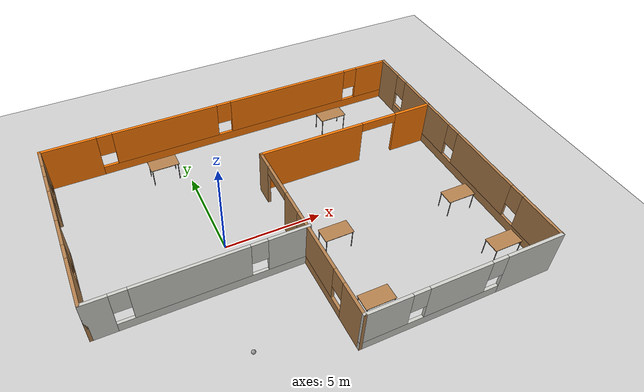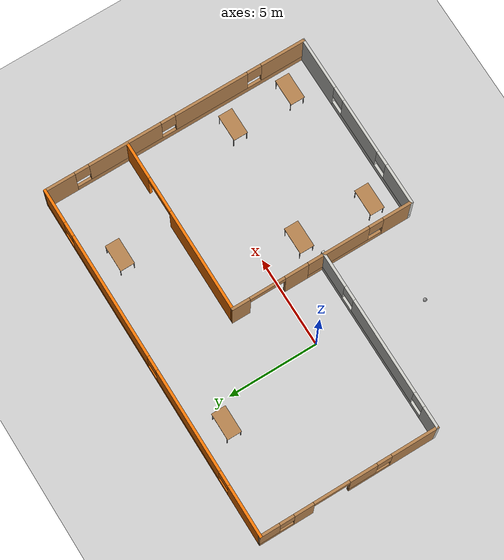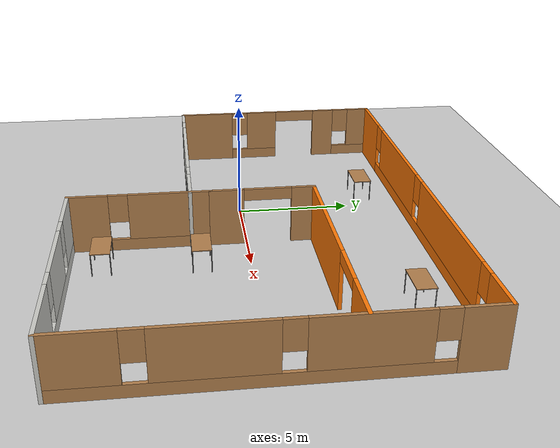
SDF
<sdf version="1.6">
 <world name="default">
  <plugin name="welcome" filename="libwelcome.so"/>
  <light name="sun" type="directional">
   <pose>0 0 10 0 -0 0</pose>
   <diffuse>0.8 0.8 0.8 1</diffuse>
   <specular>0.2 0.2 0.2 1</specular>
   <attenuation>
    <range>1000</range>
    <constant>0.9</constant>
    <linear>0.01</linear>
    <quadratic>0.001</quadratic>
   </attenuation>
   <direction>-0.5 0.1 -0.9</direction>
  </light>
  <model name="ground_plane">
   <static>1</static>
   <link name="link">
    <collision name="collision">
     <geometry><plane><normal>0 0 1</normal><size>100 100</size></plane></geometry>
     <surface>
      <contact><collide_bitmask>65535</collide_bitmask></contact>
      <friction><ode><mu>100</mu><mu2>50</mu2></ode></friction>
     </surface>
    </collision>
    <visual name="visual">
     <cast_shadows>0</cast_shadows>
     <geometry><plane><normal>0 0 1</normal><size>100 100</size></plane></geometry>
     <material>
      <script><uri>file://media/materials/scripts/gazebo.material</uri><name>Gazebo/Grey</name></script>
     </material>
    </visual>
   </link>
  </model>
  <gravity>0 0 -9.8</gravity>
  <magnetic_field>6e-06 2.3e-05 -4.2e-05</magnetic_field>
  <atmosphere type="adiabatic"/>
  <physics name="default_physics" default="0" type="ode">
   <max_step_size>0.001</max_step_size>
   <real_time_factor>1</real_time_factor>
   <real_time_update_rate>1000</real_time_update_rate>
  </physics>
  <scene><ambient>0.4 0.4 0.4 1</ambient><background>0.7 0.7 0.7 1</background><shadows>1</shadows></scene>
  <spherical_coordinates>
   <surface_model>EARTH_WGS84</surface_model>
   <latitude_deg>0</latitude_deg>
   <longitude_deg>0</longitude_deg>
   <elevation>0</elevation>
   <heading_deg>0</heading_deg>
  </spherical_coordinates>
  <model name="building_0">
   <pose>3.05389 0.08095 0 0 -0 0</pose>
   <link name="Wall_100">
    <pose>-4.875 -2.425 0 0 -0 0</pose>
    <visual name="Wall_100_Visual_0">
     <pose>-4.50618 0 1.25 0 -0 0</pose>
     <geometry><box><size>1.23764 0.15 2.5</size></box></geometry>
     <material>
      <script><uri>file://media/materials/scripts/gazebo.material</uri><name>Gazebo/CeilingTiled</name></script>
      <ambient>0.996078 0.47451 0.0196078 1</ambient>
     </material>
     <meta><layer>0</layer></meta>
    </visual>
    <collision name="Wall_100_Collision_0">
     <geometry><box><size>1.23764 0.15 2.5</size></box></geometry>
     <pose>-4.50618 0 1.25 0 -0 0</pose>
    </collision>
    <visual name="Wall_100_Visual_1">
     <pose>0.618821 0 0.25 0 -0 0</pose>
     <geometry><box><size>9.01236 0.15 0.5</size></box></geometry>
     <material>
      <script><uri>file://media/materials/scripts/gazebo.material</uri><name>Gazebo/CeilingTiled</name></script>
      <ambient>0.996078 0.47451 0.0196078 1</ambient>
     </material>
     <meta><layer>0</layer></meta>
    </visual>
    <collision name="Wall_100_Collision_1">
     <geometry><box><size>9.01236 0.15 0.5</size></box></geometry>
     <pose>0.618821 0 0.25 0 -0 0</pose>
    </collision>
    <visual name="Wall_100_Visual_2">
     <pose>-0.416967 0 1.5 0 -0 0</pose>
     <geometry><box><size>5.34078 0.15 2</size></box></geometry>
     <material>
      <script><uri>file://media/materials/scripts/gazebo.material</uri><name>Gazebo/CeilingTiled</name></script>
      <ambient>0.996078 0.47451 0.0196078 1</ambient>
     </material>
     <meta><layer>0</layer></meta>
    </visual>
    <collision name="Wall_100_Collision_2">
     <geometry><box><size>5.34078 0.15 2</size></box></geometry>
     <pose>-0.416967 0 1.5 0 -0 0</pose>
    </collision>
    <visual name="Wall_100_Visual_3">
     <pose>4.08921 0 1.5 0 -0 0</pose>
     <geometry><box><size>2.07158 0.15 2</size></box></geometry>
     <material>
      <script><uri>file://media/materials/scripts/gazebo.material</uri><name>Gazebo/CeilingTiled</name></script>
      <ambient>0.996078 0.47451 0.0196078 1</ambient>
     </material>
     <meta><layer>0</layer></meta>
    </visual>
    <collision name="Wall_100_Collision_3">
     <geometry><box><size>2.07158 0.15 2</size></box></geometry>
     <pose>4.08921 0 1.5 0 -0 0</pose>
    </collision>
    <visual name="Wall_100_Visual_4">
     <pose>-3.48736 0 1.9 0 -0 0</pose>
     <geometry><box><size>0.8 0.15 1.2</size></box></geometry>
     <material>
      <script><uri>file://media/materials/scripts/gazebo.material</uri><name>Gazebo/CeilingTiled</name></script>
      <ambient>0.996078 0.47451 0.0196078 1</ambient>
     </material>
     <meta><layer>0</layer></meta>
    </visual>
    <collision name="Wall_100_Collision_4">
     <geometry><box><size>0.8 0.15 1.2</size></box></geometry>
     <pose>-3.48736 0 1.9 0 -0 0</pose>
    </collision>
    <visual name="Wall_100_Visual_5">
     <pose>2.65342 0 1.9 0 -0 0</pose>
     <geometry><box><size>0.8 0.15 1.2</size></box></geometry>
     <material>
      <script><uri>file://media/materials/scripts/gazebo.material</uri><name>Gazebo/CeilingTiled</name></script>
      <ambient>0.996078 0.47451 0.0196078 1</ambient>
     </material>
     <meta><layer>0</layer></meta>
    </visual>
    <collision name="Wall_100_Collision_5">
     <geometry><box><size>0.8 0.15 1.2</size></box></geometry>
     <pose>2.65342 0 1.9 0 -0 0</pose>
    </collision>
   </link>
   <link name="Wall_102">
    <pose>0.075 0.6 0 0 -0 1.5708</pose>
    <visual name="Wall_102_Visual_0">
     <pose>-1.51676 0 1.25 0 -0 0</pose>
     <geometry><box><size>1.46648 0.15 2.5</size></box></geometry>
     <material>
      <script><uri>file://media/materials/scripts/gazebo.material</uri><name>Gazebo/Wood</name></script>
      <ambient>0.996078 0.47451 0.0196078 1</ambient>
     </material>
     <meta><layer>0</layer></meta>
    </visual>
    <collision name="Wall_102_Collision_0">
     <geometry><box><size>1.46648 0.15 2.5</size></box></geometry>
     <pose>-1.51676 0 1.25 0 -0 0</pose>
    </collision>
    <visual name="Wall_102_Visual_1">
     <pose>1.73324 0 1.25 0 -0 0</pose>
     <geometry><box><size>1.03352 0.15 2.5</size></box></geometry>
     <material>
      <script><uri>file://media/materials/scripts/gazebo.material</uri><name>Gazebo/Wood</name></script>
      <ambient>0.996078 0.47451 0.0196078 1</ambient>
     </material>
     <meta><layer>0</layer></meta>
    </visual>
    <collision name="Wall_102_Collision_1">
     <geometry><box><size>1.03352 0.15 2.5</size></box></geometry>
     <pose>1.73324 0 1.25 0 -0 0</pose>
    </collision>
    <visual name="Wall_102_Visual_2">
     <pose>0.216481 0 2.25 0 -0 0</pose>
     <geometry><box><size>2 0.15 0.5</size></box></geometry>
     <material>
      <script><uri>file://media/materials/scripts/gazebo.material</uri><name>Gazebo/Wood</name></script>
      <ambient>0.996078 0.47451 0.0196078 1</ambient>
     </material>
     <meta><layer>0</layer></meta>
    </visual>
    <collision name="Wall_102_Collision_2">
     <geometry><box><size>2 0.15 0.5</size></box></geometry>
     <pose>0.216481 0 2.25 0 -0 0</pose>
    </collision>
   </link>
   <link name="Wall_104">
    <pose>5 2.775 0 0 -0 0</pose>
    <visual name="Wall_104_Visual_0">
     <pose>-2.08983 0 1.25 0 -0 0</pose>
     <geometry><box><size>5.82034 0.15 2.5</size></box></geometry>
     <material>
      <script><uri>file://media/materials/scripts/gazebo.material</uri><name>Gazebo/Grey</name></script>
      <ambient>0.996078 0.47451 0.0196078 1</ambient>
     </material>
     <meta><layer>0</layer></meta>
    </visual>
    <collision name="Wall_104_Collision_0">
     <geometry><box><size>5.82034 0.15 2.5</size></box></geometry>
     <pose>-2.08983 0 1.25 0 -0 0</pose>
    </collision>
    <visual name="Wall_104_Visual_1">
     <pose>3.91017 0 1.25 0 -0 0</pose>
     <geometry><box><size>2.17965 0.15 2.5</size></box></geometry>
     <material>
      <script><uri>file://media/materials/scripts/gazebo.material</uri><name>Gazebo/Grey</name></script>
      <ambient>0.996078 0.47451 0.0196078 1</ambient>
     </material>
     <meta><layer>0</layer></meta>
    </visual>
    <collision name="Wall_104_Collision_1">
     <geometry><box><size>2.17965 0.15 2.5</size></box></geometry>
     <pose>3.91017 0 1.25 0 -0 0</pose>
    </collision>
    <visual name="Wall_104_Visual_2">
     <pose>1.82035 0 2.25 0 -0 0</pose>
     <geometry><box><size>2 0.15 0.5</size></box></geometry>
     <material>
      <script><uri>file://media/materials/scripts/gazebo.material</uri><name>Gazebo/Grey</name></script>
      <ambient>0.996078 0.47451 0.0196078 1</ambient>
     </material>
     <meta><layer>0</layer></meta>
    </visual>
    <collision name="Wall_104_Collision_2">
     <geometry><box><size>2 0.15 0.5</size></box></geometry>
     <pose>1.82035 0 2.25 0 -0 0</pose>
    </collision>
   </link>
   <link name="Wall_90">
    <pose>-9.925 2.5 0 0 -0 1.5708</pose>
    <visual name="Wall_90_Visual_0">
     <pose>-3.67666 0 1.25 0 -0 0</pose>
     <geometry><box><size>2.64668 0.15 2.5</size></box></geometry>
     <material>
      <script><uri>file://media/materials/scripts/gazebo.material</uri><name>Gazebo/Wood</name></script>
      <ambient>0.996078 0.47451 0.0196078 1</ambient>
     </material>
     <meta><layer>0</layer></meta>
    </visual>
    <collision name="Wall_90_Collision_0">
     <geometry><box><size>2.64668 0.15 2.5</size></box></geometry>
     <pose>-3.67666 0 1.25 0 -0 0</pose>
    </collision>
    <visual name="Wall_90_Visual_1">
     <pose>2.52285 0 1.25 0 -0 0</pose>
     <geometry><box><size>1.08977 0.15 2.5</size></box></geometry>
     <material>
      <script><uri>file://media/materials/scripts/gazebo.material</uri><name>Gazebo/Wood</name></script>
      <ambient>0.996078 0.47451 0.0196078 1</ambient>
     </material>
     <meta><layer>0</layer></meta>
    </visual>
    <collision name="Wall_90_Collision_1">
     <geometry><box><size>1.08977 0.15 2.5</size></box></geometry>
     <pose>2.52285 0 1.25 0 -0 0</pose>
    </collision>
    <visual name="Wall_90_Visual_2">
     <pose>-1.18768 0 0.25 0 -0 0</pose>
     <geometry><box><size>2.33128 0.15 0.5</size></box></geometry>
     <material>
      <script><uri>file://media/materials/scripts/gazebo.material</uri><name>Gazebo/Wood</name></script>
      <ambient>0.996078 0.47451 0.0196078 1</ambient>
     </material>
     <meta><layer>0</layer></meta>
    </visual>
    <collision name="Wall_90_Collision_2">
     <geometry><box><size>2.33128 0.15 0.5</size></box></geometry>
     <pose>-1.18768 0 0.25 0 -0 0</pose>
    </collision>
    <visual name="Wall_90_Visual_3">
     <pose>4.03387 0 0.25 0 -0 0</pose>
     <geometry><box><size>1.93227 0.15 0.5</size></box></geometry>
     <material>
      <script><uri>file://media/materials/scripts/gazebo.material</uri><name>Gazebo/Wood</name></script>
      <ambient>0.996078 0.47451 0.0196078 1</ambient>
     </material>
     <meta><layer>0</layer></meta>
    </visual>
    <collision name="Wall_90_Collision_3">
     <geometry><box><size>1.93227 0.15 0.5</size></box></geometry>
     <pose>4.03387 0 0.25 0 -0 0</pose>
    </collision>
    <visual name="Wall_90_Visual_4">
     <pose>-0.787677 0 1.5 0 -0 0</pose>
     <geometry><box><size>1.53128 0.15 2</size></box></geometry>
     <material>
      <script><uri>file://media/materials/scripts/gazebo.material</uri><name>Gazebo/Wood</name></script>
      <ambient>0.996078 0.47451 0.0196078 1</ambient>
     </material>
     <meta><layer>0</layer></meta>
    </visual>
    <collision name="Wall_90_Collision_4">
     <geometry><box><size>1.53128 0.15 2</size></box></geometry>
     <pose>-0.787677 0 1.5 0 -0 0</pose>
    </collision>
    <visual name="Wall_90_Visual_5">
     <pose>-0.787677 0 1.5 0 -0 0</pose>
     <geometry><box><size>1.53128 0.15 2</size></box></geometry>
     <material>
      <script><uri>file://media/materials/scripts/gazebo.material</uri><name>Gazebo/Wood</name></script>
      <ambient>0.996078 0.47451 0.0196078 1</ambient>
     </material>
     <meta><layer>0</layer></meta>
    </visual>
    <collision name="Wall_90_Collision_5">
     <geometry><box><size>1.53128 0.15 2</size></box></geometry>
     <pose>-0.787677 0 1.5 0 -0 0</pose>
    </collision>
    <visual name="Wall_90_Visual_6">
     <pose>4.43387 0 1.5 0 -0 0</pose>
     <geometry><box><size>1.13227 0.15 2</size></box></geometry>
     <material>
      <script><uri>file://media/materials/scripts/gazebo.material</uri><name>Gazebo/Wood</name></script>
      <ambient>0.996078 0.47451 0.0196078 1</ambient>
     </material>
     <meta><layer>0</layer></meta>
    </visual>
    <collision name="Wall_90_Collision_6">
     <geometry><box><size>1.13227 0.15 2</size></box></geometry>
     <pose>4.43387 0 1.5 0 -0 0</pose>
    </collision>
    <visual name="Wall_90_Visual_7">
     <pose>-1.95332 0 1.9 0 -0 0</pose>
     <geometry><box><size>0.8 0.15 1.2</size></box></geometry>
     <material>
      <script><uri>file://media/materials/scripts/gazebo.material</uri><name>Gazebo/Wood</name></script>
      <ambient>0.996078 0.47451 0.0196078 1</ambient>
     </material>
     <meta><layer>0</layer></meta>
    </visual>
    <collision name="Wall_90_Collision_7">
     <geometry><box><size>0.8 0.15 1.2</size></box></geometry>
     <pose>-1.95332 0 1.9 0 -0 0</pose>
    </collision>
    <visual name="Wall_90_Visual_8">
     <pose>3.46773 0 1.9 0 -0 0</pose>
     <geometry><box><size>0.8 0.15 1.2</size></box></geometry>
     <material>
      <script><uri>file://media/materials/scripts/gazebo.material</uri><name>Gazebo/Wood</name></script>
      <ambient>0.996078 0.47451 0.0196078 1</ambient>
     </material>
     <meta><layer>0</layer></meta>
    </visual>
    <collision name="Wall_90_Collision_8">
     <geometry><box><size>0.8 0.15 1.2</size></box></geometry>
     <pose>3.46773 0 1.9 0 -0 0</pose>
    </collision>
    <visual name="Wall_90_Visual_9">
     <pose>0.977961 0 2.25 0 -0 0</pose>
     <geometry><box><size>2 0.15 0.5</size></box></geometry>
     <material>
      <script><uri>file://media/materials/scripts/gazebo.material</uri><name>Gazebo/Wood</name></script>
      <ambient>0.996078 0.47451 0.0196078 1</ambient>
     </material>
     <meta><layer>0</layer></meta>
    </visual>
    <collision name="Wall_90_Collision_9">
     <geometry><box><size>2 0.15 0.5</size></box></geometry>
     <pose>0.977961 0 2.25 0 -0 0</pose>
    </collision>
    <visual name="Wall_90_Visual_10">
     <pose>0.977961 0 2.25 0 -0 0</pose>
     <geometry><box><size>2 0.15 0.5</size></box></geometry>
     <material>
      <script><uri>file://media/materials/scripts/gazebo.material</uri><name>Gazebo/Wood</name></script>
      <ambient>0.996078 0.47451 0.0196078 1</ambient>
     </material>
     <meta><layer>0</layer></meta>
    </visual>
    <collision name="Wall_90_Collision_10">
     <geometry><box><size>2 0.15 0.5</size></box></geometry>
     <pose>0.977961 0 2.25 0 -0 0</pose>
    </collision>
   </link>
   <link name="Wall_92">
    <pose>0 7.425 0 0 -0 0</pose>
    <visual name="Wall_92_Visual_0">
     <pose>-8.55189 0 1.25 0 -0 0</pose>
     <geometry><box><size>2.89622 0.15 2.5</size></box></geometry>
     <material>
      <script><uri>file://media/materials/scripts/gazebo.material</uri><name>Gazebo/Grey</name></script>
      <ambient>0.996078 0.47451 0.0196078 1</ambient>
     </material>
     <meta><layer>0</layer></meta>
    </visual>
    <collision name="Wall_92_Collision_0">
     <geometry><box><size>2.89622 0.15 2.5</size></box></geometry>
     <pose>-8.55189 0 1.25 0 -0 0</pose>
    </collision>
    <visual name="Wall_92_Visual_1">
     <pose>1.44811 0 0.25 0 -0 0</pose>
     <geometry><box><size>17.1038 0.15 0.5</size></box></geometry>
     <material>
      <script><uri>file://media/materials/scripts/gazebo.material</uri><name>Gazebo/Grey</name></script>
      <ambient>0.996078 0.47451 0.0196078 1</ambient>
     </material>
     <meta><layer>0</layer></meta>
    </visual>
    <collision name="Wall_92_Collision_1">
     <geometry><box><size>17.1038 0.15 0.5</size></box></geometry>
     <pose>1.44811 0 0.25 0 -0 0</pose>
    </collision>
    <visual name="Wall_92_Visual_2">
     <pose>-3.44613 0 1.5 0 -0 0</pose>
     <geometry><box><size>5.7153 0.15 2</size></box></geometry>
     <material>
      <script><uri>file://media/materials/scripts/gazebo.material</uri><name>Gazebo/Grey</name></script>
      <ambient>0.996078 0.47451 0.0196078 1</ambient>
     </material>
     <meta><layer>0</layer></meta>
    </visual>
    <collision name="Wall_92_Collision_2">
     <geometry><box><size>5.7153 0.15 2</size></box></geometry>
     <pose>-3.44613 0 1.5 0 -0 0</pose>
    </collision>
    <visual name="Wall_92_Visual_3">
     <pose>3.7232 0 1.5 0 -0 0</pose>
     <geometry><box><size>7.02337 0.15 2</size></box></geometry>
     <material>
      <script><uri>file://media/materials/scripts/gazebo.material</uri><name>Gazebo/Grey</name></script>
      <ambient>0.996078 0.47451 0.0196078 1</ambient>
     </material>
     <meta><layer>0</layer></meta>
    </visual>
    <collision name="Wall_92_Collision_3">
     <geometry><box><size>7.02337 0.15 2</size></box></geometry>
     <pose>3.7232 0 1.5 0 -0 0</pose>
    </collision>
    <visual name="Wall_92_Visual_4">
     <pose>9.01745 0 1.5 0 -0 0</pose>
     <geometry><box><size>1.96511 0.15 2</size></box></geometry>
     <material>
      <script><uri>file://media/materials/scripts/gazebo.material</uri><name>Gazebo/Grey</name></script>
      <ambient>0.996078 0.47451 0.0196078 1</ambient>
     </material>
     <meta><layer>0</layer></meta>
    </visual>
    <collision name="Wall_92_Collision_4">
     <geometry><box><size>1.96511 0.15 2</size></box></geometry>
     <pose>9.01745 0 1.5 0 -0 0</pose>
    </collision>
    <visual name="Wall_92_Visual_5">
     <pose>-6.70378 0 1.9 0 -0 0</pose>
     <geometry><box><size>0.8 0.15 1.2</size></box></geometry>
     <material>
      <script><uri>file://media/materials/scripts/gazebo.material</uri><name>Gazebo/Grey</name></script>
      <ambient>0.996078 0.47451 0.0196078 1</ambient>
     </material>
     <meta><layer>0</layer></meta>
    </visual>
    <collision name="Wall_92_Collision_5">
     <geometry><box><size>0.8 0.15 1.2</size></box></geometry>
     <pose>-6.70378 0 1.9 0 -0 0</pose>
    </collision>
    <visual name="Wall_92_Visual_6">
     <pose>-0.188482 0 1.9 0 -0 0</pose>
     <geometry><box><size>0.8 0.15 1.2</size></box></geometry>
     <material>
      <script><uri>file://media/materials/scripts/gazebo.material</uri><name>Gazebo/Grey</name></script>
      <ambient>0.996078 0.47451 0.0196078 1</ambient>
     </material>
     <meta><layer>0</layer></meta>
    </visual>
    <collision name="Wall_92_Collision_6">
     <geometry><box><size>0.8 0.15 1.2</size></box></geometry>
     <pose>-0.188482 0 1.9 0 -0 0</pose>
    </collision>
    <visual name="Wall_92_Visual_7">
     <pose>7.63489 0 1.9 0 -0 0</pose>
     <geometry><box><size>0.8 0.15 1.2</size></box></geometry>
     <material>
      <script><uri>file://media/materials/scripts/gazebo.material</uri><name>Gazebo/Grey</name></script>
      <ambient>0.996078 0.47451 0.0196078 1</ambient>
     </material>
     <meta><layer>0</layer></meta>
    </visual>
    <collision name="Wall_92_Collision_7">
     <geometry><box><size>0.8 0.15 1.2</size></box></geometry>
     <pose>7.63489 0 1.9 0 -0 0</pose>
    </collision>
   </link>
   <link name="Wall_94">
    <pose>9.925 0 0 0 0 -1.5708</pose>
    <visual name="Wall_94_Visual_0">
     <pose>-6.6321 0 1.25 0 -0 0</pose>
     <geometry><box><size>1.73581 0.15 2.5</size></box></geometry>
     <material>
      <script><uri>file://media/materials/scripts/gazebo.material</uri><name>Gazebo/Wood</name></script>
      <ambient>0.996078 0.47451 0.0196078 1</ambient>
     </material>
     <meta><layer>0</layer></meta>
    </visual>
    <collision name="Wall_94_Collision_0">
     <geometry><box><size>1.73581 0.15 2.5</size></box></geometry>
     <pose>-6.6321 0 1.25 0 -0 0</pose>
    </collision>
    <visual name="Wall_94_Visual_1">
     <pose>0.867903 0 0.25 0 -0 0</pose>
     <geometry><box><size>13.2642 0.15 0.5</size></box></geometry>
     <material>
      <script><uri>file://media/materials/scripts/gazebo.material</uri><name>Gazebo/Wood</name></script>
      <ambient>0.996078 0.47451 0.0196078 1</ambient>
     </material>
     <meta><layer>0</layer></meta>
    </visual>
    <collision name="Wall_94_Collision_1">
     <geometry><box><size>13.2642 0.15 0.5</size></box></geometry>
     <pose>0.867903 0 0.25 0 -0 0</pose>
    </collision>
    <visual name="Wall_94_Visual_2">
     <pose>-2.90308 0 1.5 0 -0 0</pose>
     <geometry><box><size>4.12223 0.15 2</size></box></geometry>
     <material>
      <script><uri>file://media/materials/scripts/gazebo.material</uri><name>Gazebo/Wood</name></script>
      <ambient>0.996078 0.47451 0.0196078 1</ambient>
     </material>
     <meta><layer>0</layer></meta>
    </visual>
    <collision name="Wall_94_Collision_2">
     <geometry><box><size>4.12223 0.15 2</size></box></geometry>
     <pose>-2.90308 0 1.5 0 -0 0</pose>
    </collision>
    <visual name="Wall_94_Visual_3">
     <pose>2.0459 0 1.5 0 -0 0</pose>
     <geometry><box><size>4.17573 0.15 2</size></box></geometry>
     <material>
      <script><uri>file://media/materials/scripts/gazebo.material</uri><name>Gazebo/Wood</name></script>
      <ambient>0.996078 0.47451 0.0196078 1</ambient>
     </material>
     <meta><layer>0</layer></meta>
    </visual>
    <collision name="Wall_94_Collision_3">
     <geometry><box><size>4.17573 0.15 2</size></box></geometry>
     <pose>2.0459 0 1.5 0 -0 0</pose>
    </collision>
    <visual name="Wall_94_Visual_4">
     <pose>6.21688 0 1.5 0 -0 0</pose>
     <geometry><box><size>2.56623 0.15 2</size></box></geometry>
     <material>
      <script><uri>file://media/materials/scripts/gazebo.material</uri><name>Gazebo/Wood</name></script>
      <ambient>0.996078 0.47451 0.0196078 1</ambient>
     </material>
     <meta><layer>0</layer></meta>
    </visual>
    <collision name="Wall_94_Collision_4">
     <geometry><box><size>2.56623 0.15 2</size></box></geometry>
     <pose>6.21688 0 1.5 0 -0 0</pose>
    </collision>
    <visual name="Wall_94_Visual_5">
     <pose>-5.36419 0 1.9 0 -0 0</pose>
     <geometry><box><size>0.8 0.15 1.2</size></box></geometry>
     <material>
      <script><uri>file://media/materials/scripts/gazebo.material</uri><name>Gazebo/Wood</name></script>
      <ambient>0.996078 0.47451 0.0196078 1</ambient>
     </material>
     <meta><layer>0</layer></meta>
    </visual>
    <collision name="Wall_94_Collision_5">
     <geometry><box><size>0.8 0.15 1.2</size></box></geometry>
     <pose>-5.36419 0 1.9 0 -0 0</pose>
    </collision>
    <visual name="Wall_94_Visual_6">
     <pose>-0.441964 0 1.9 0 -0 0</pose>
     <geometry><box><size>0.8 0.15 1.2</size></box></geometry>
     <material>
      <script><uri>file://media/materials/scripts/gazebo.material</uri><name>Gazebo/Wood</name></script>
      <ambient>0.996078 0.47451 0.0196078 1</ambient>
     </material>
     <meta><layer>0</layer></meta>
    </visual>
    <collision name="Wall_94_Collision_6">
     <geometry><box><size>0.8 0.15 1.2</size></box></geometry>
     <pose>-0.441964 0 1.9 0 -0 0</pose>
    </collision>
    <visual name="Wall_94_Visual_7">
     <pose>4.53377 0 1.9 0 -0 0</pose>
     <geometry><box><size>0.8 0.15 1.2</size></box></geometry>
     <material>
      <script><uri>file://media/materials/scripts/gazebo.material</uri><name>Gazebo/Wood</name></script>
      <ambient>0.996078 0.47451 0.0196078 1</ambient>
     </material>
     <meta><layer>0</layer></meta>
    </visual>
    <collision name="Wall_94_Collision_7">
     <geometry><box><size>0.8 0.15 1.2</size></box></geometry>
     <pose>4.53377 0 1.9 0 -0 0</pose>
    </collision>
   </link>
   <link name="Wall_96">
    <pose>5 -7.425 0 0 -0 3.14159</pose>
    <visual name="Wall_96_Visual_0">
     <pose>-3.50317 0 1.25 0 -0 0</pose>
     <geometry><box><size>2.99366 0.15 2.5</size></box></geometry>
     <material>
      <script><uri>file://media/materials/scripts/gazebo.material</uri><name>Gazebo/CeilingTiled</name></script>
      <ambient>0.996078 0.47451 0.0196078 1</ambient>
     </material>
     <meta><layer>0</layer></meta>
    </visual>
    <collision name="Wall_96_Collision_0">
     <geometry><box><size>2.99366 0.15 2.5</size></box></geometry>
     <pose>-3.50317 0 1.25 0 -0 0</pose>
    </collision>
    <visual name="Wall_96_Visual_1">
     <pose>1.49683 0 0.25 0 -0 0</pose>
     <geometry><box><size>7.00634 0.15 0.5</size></box></geometry>
     <material>
      <script><uri>file://media/materials/scripts/gazebo.material</uri><name>Gazebo/CeilingTiled</name></script>
      <ambient>0.996078 0.47451 0.0196078 1</ambient>
     </material>
     <meta><layer>0</layer></meta>
    </visual>
    <collision name="Wall_96_Collision_1">
     <geometry><box><size>7.00634 0.15 0.5</size></box></geometry>
     <pose>1.49683 0 0.25 0 -0 0</pose>
    </collision>
    <visual name="Wall_96_Visual_2">
     <pose>0.346506 0 1.5 0 -0 0</pose>
     <geometry><box><size>3.10568 0.15 2</size></box></geometry>
     <material>
      <script><uri>file://media/materials/scripts/gazebo.material</uri><name>Gazebo/CeilingTiled</name></script>
      <ambient>0.996078 0.47451 0.0196078 1</ambient>
     </material>
     <meta><layer>0</layer></meta>
    </visual>
    <collision name="Wall_96_Collision_2">
     <geometry><box><size>3.10568 0.15 2</size></box></geometry>
     <pose>0.346506 0 1.5 0 -0 0</pose>
    </collision>
    <visual name="Wall_96_Visual_3">
     <pose>3.84967 0 1.5 0 -0 0</pose>
     <geometry><box><size>2.30065 0.15 2</size></box></geometry>
     <material>
      <script><uri>file://media/materials/scripts/gazebo.material</uri><name>Gazebo/CeilingTiled</name></script>
      <ambient>0.996078 0.47451 0.0196078 1</ambient>
     </material>
     <meta><layer>0</layer></meta>
    </visual>
    <collision name="Wall_96_Collision_3">
     <geometry><box><size>2.30065 0.15 2</size></box></geometry>
     <pose>3.84967 0 1.5 0 -0 0</pose>
    </collision>
    <visual name="Wall_96_Visual_4">
     <pose>-1.60634 0 1.9 0 -0 0</pose>
     <geometry><box><size>0.8 0.15 1.2</size></box></geometry>
     <material>
      <script><uri>file://media/materials/scripts/gazebo.material</uri><name>Gazebo/CeilingTiled</name></script>
      <ambient>0.996078 0.47451 0.0196078 1</ambient>
     </material>
     <meta><layer>0</layer></meta>
    </visual>
    <collision name="Wall_96_Collision_4">
     <geometry><box><size>0.8 0.15 1.2</size></box></geometry>
     <pose>-1.60634 0 1.9 0 -0 0</pose>
    </collision>
    <visual name="Wall_96_Visual_5">
     <pose>2.29935 0 1.9 0 -0 0</pose>
     <geometry><box><size>0.8 0.15 1.2</size></box></geometry>
     <material>
      <script><uri>file://media/materials/scripts/gazebo.material</uri><name>Gazebo/CeilingTiled</name></script>
      <ambient>0.996078 0.47451 0.0196078 1</ambient>
     </material>
     <meta><layer>0</layer></meta>
    </visual>
    <collision name="Wall_96_Collision_5">
     <geometry><box><size>0.8 0.15 1.2</size></box></geometry>
     <pose>2.29935 0 1.9 0 -0 0</pose>
    </collision>
   </link>
   <link name="Wall_98">
    <pose>0.075 -4.5 0 0 -0 1.5708</pose>
    <visual name="Wall_98_Visual_0">
     <pose>-2.1449 0 1.25 0 -0 0</pose>
     <geometry><box><size>1.71019 0.15 2.5</size></box></geometry>
     <material>
      <script><uri>file://media/materials/scripts/gazebo.material</uri><name>Gazebo/Wood</name></script>
      <ambient>0.996078 0.47451 0.0196078 1</ambient>
     </material>
     <meta><layer>0</layer></meta>
    </visual>
    <collision name="Wall_98_Collision_0">
     <geometry><box><size>1.71019 0.15 2.5</size></box></geometry>
     <pose>-2.1449 0 1.25 0 -0 0</pose>
    </collision>
    <visual name="Wall_98_Visual_1">
     <pose>0.855096 0 0.25 0 -0 0</pose>
     <geometry><box><size>4.28981 0.15 0.5</size></box></geometry>
     <material>
      <script><uri>file://media/materials/scripts/gazebo.material</uri><name>Gazebo/Wood</name></script>
      <ambient>0.996078 0.47451 0.0196078 1</ambient>
     </material>
     <meta><layer>0</layer></meta>
    </visual>
    <collision name="Wall_98_Collision_1">
     <geometry><box><size>4.28981 0.15 0.5</size></box></geometry>
     <pose>0.855096 0 0.25 0 -0 0</pose>
    </collision>
    <visual name="Wall_98_Visual_2">
     <pose>1.2551 0 1.5 0 -0 0</pose>
     <geometry><box><size>3.48981 0.15 2</size></box></geometry>
     <material>
      <script><uri>file://media/materials/scripts/gazebo.material</uri><name>Gazebo/Wood</name></script>
      <ambient>0.996078 0.47451 0.0196078 1</ambient>
     </material>
     <meta><layer>0</layer></meta>
    </visual>
    <collision name="Wall_98_Collision_2">
     <geometry><box><size>3.48981 0.15 2</size></box></geometry>
     <pose>1.2551 0 1.5 0 -0 0</pose>
    </collision>
    <visual name="Wall_98_Visual_3">
     <pose>-0.889809 0 1.9 0 -0 0</pose>
     <geometry><box><size>0.8 0.15 1.2</size></box></geometry>
     <material>
      <script><uri>file://media/materials/scripts/gazebo.material</uri><name>Gazebo/Wood</name></script>
      <ambient>0.996078 0.47451 0.0196078 1</ambient>
     </material>
     <meta><layer>0</layer></meta>
    </visual>
    <collision name="Wall_98_Collision_3">
     <geometry><box><size>0.8 0.15 1.2</size></box></geometry>
     <pose>-0.889809 0 1.9 0 -0 0</pose>
    </collision>
   </link>
   <static>1</static>
  </model>
  <model name="table">
   <static>1</static>
   <link name="link">
    <collision name="surface">
     <pose>0 0 1 0 -0 0</pose>
     <geometry><box><size>1.5 0.8 0.03</size></box></geometry>
     <surface><friction><ode><mu>0.6</mu><mu2>0.6</mu2></ode></friction></surface>
    </collision>
    <visual name="visual1">
     <pose>0 0 1 0 -0 0</pose>
     <geometry><box><size>1.5 0.8 0.03</size></box></geometry>
     <material>
      <script><uri>file://media/materials/scripts/gazebo.material</uri><name>Gazebo/Wood</name></script>
     </material>
    </visual>
    <collision name="front_left_leg">
     <pose>0.68 0.38 0.5 0 -0 0</pose>
     <geometry><cylinder><radius>0.02</radius><length>1</length></cylinder></geometry>
    </collision>
    <visual name="front_left_leg">
     <pose>0.68 0.38 0.5 0 -0 0</pose>
     <geometry><cylinder><radius>0.02</radius><length>1</length></cylinder></geometry>
     <material>
      <script><uri>file://media/materials/scripts/gazebo.material</uri><name>Gazebo/Grey</name></script>
     </material>
    </visual>
    <collision name="front_right_leg">
     <pose>0.68 -0.38 0.5 0 -0 0</pose>
     <geometry><cylinder><radius>0.02</radius><length>1</length></cylinder></geometry>
    </collision>
    <visual name="front_right_leg">
     <pose>0.68 -0.38 0.5 0 -0 0</pose>
     <geometry><cylinder><radius>0.02</radius><length>1</length></cylinder></geometry>
     <material>
      <script><uri>file://media/materials/scripts/gazebo.material</uri><name>Gazebo/Grey</name></script>
     </material>
    </visual>
    <collision name="back_right_leg">
     <pose>-0.68 -0.38 0.5 0 -0 0</pose>
     <geometry><cylinder><radius>0.02</radius><length>1</length></cylinder></geometry>
    </collision>
    <visual name="back_right_leg">
     <pose>-0.68 -0.38 0.5 0 -0 0</pose>
     <geometry><cylinder><radius>0.02</radius><length>1</length></cylinder></geometry>
     <material>
      <script><uri>file://media/materials/scripts/gazebo.material</uri><name>Gazebo/Grey</name></script>
     </material>
    </visual>
    <collision name="back_left_leg">
     <pose>-0.68 0.38 0.5 0 -0 0</pose>
     <geometry><cylinder><radius>0.02</radius><length>1</length></cylinder></geometry>
    </collision>
    <visual name="back_left_leg">
     <pose>-0.68 0.38 0.5 0 -0 0</pose>
     <geometry><cylinder><radius>0.02</radius><length>1</length></cylinder></geometry>
     <material>
      <script><uri>file://media/materials/scripts/gazebo.material</uri><name>Gazebo/Grey</name></script>
     </material>
    </visual>
   </link>
   <pose>11.596 -5.72075 0 0 -0 0</pose>
  </model>
  <model name="table_0">
   <static>1</static>
   <link name="link">
    <collision name="surface">
     <pose>0 0 1 0 -0 0</pose>
     <geometry><box><size>1.5 0.8 0.03</size></box></geometry>
     <surface><friction><ode><mu>0.6</mu><mu2>0.6</mu2></ode></friction></surface>
    </collision>
    <visual name="visual1">
     <pose>0 0 1 0 -0 0</pose>
     <geometry><box><size>1.5 0.8 0.03</size></box></geometry>
     <material>
      <script><uri>file://media/materials/scripts/gazebo.material</uri><name>Gazebo/Wood</name></script>
     </material>
    </visual>
    <collision name="front_left_leg">
     <pose>0.68 0.38 0.5 0 -0 0</pose>
     <geometry><cylinder><radius>0.02</radius><length>1</length></cylinder></geometry>
    </collision>
    <visual name="front_left_leg">
     <pose>0.68 0.38 0.5 0 -0 0</pose>
     <geometry><cylinder><radius>0.02</radius><length>1</length></cylinder></geometry>
     <material>
      <script><uri>file://media/materials/scripts/gazebo.material</uri><name>Gazebo/Grey</name></script>
     </material>
    </visual>
    <collision name="front_right_leg">
     <pose>0.68 -0.38 0.5 0 -0 0</pose>
     <geometry><cylinder><radius>0.02</radius><length>1</length></cylinder></geometry>
    </collision>
    <visual name="front_right_leg">
     <pose>0.68 -0.38 0.5 0 -0 0</pose>
     <geometry><cylinder><radius>0.02</radius><length>1</length></cylinder></geometry>
     <material>
      <script><uri>file://media/materials/scripts/gazebo.material</uri><name>Gazebo/Grey</name></script>
     </material>
    </visual>
    <collision name="back_right_leg">
     <pose>-0.68 -0.38 0.5 0 -0 0</pose>
     <geometry><cylinder><radius>0.02</radius><length>1</length></cylinder></geometry>
    </collision>
    <visual name="back_right_leg">
     <pose>-0.68 -0.38 0.5 0 -0 0</pose>
     <geometry><cylinder><radius>0.02</radius><length>1</length></cylinder></geometry>
     <material>
      <script><uri>file://media/materials/scripts/gazebo.material</uri><name>Gazebo/Grey</name></script>
     </material>
    </visual>
    <collision name="back_left_leg">
     <pose>-0.68 0.38 0.5 0 -0 0</pose>
     <geometry><cylinder><radius>0.02</radius><length>1</length></cylinder></geometry>
    </collision>
    <visual name="back_left_leg">
     <pose>-0.68 0.38 0.5 0 -0 0</pose>
     <geometry><cylinder><radius>0.02</radius><length>1</length></cylinder></geometry>
     <material>
      <script><uri>file://media/materials/scripts/gazebo.material</uri><name>Gazebo/Grey</name></script>
     </material>
    </visual>
   </link>
   <pose>11.5046 -2.32024 0 0 -0 0</pose>
  </model>
  <model name="table_1">
   <static>1</static>
   <link name="link">
    <collision name="surface">
     <pose>0 0 1 0 -0 0</pose>
     <geometry><box><size>1.5 0.8 0.03</size></box></geometry>
     <surface><friction><ode><mu>0.6</mu><mu2>0.6</mu2></ode></friction></surface>
    </collision>
    <visual name="visual1">
     <pose>0 0 1 0 -0 0</pose>
     <geometry><box><size>1.5 0.8 0.03</size></box></geometry>
     <material>
      <script><uri>file://media/materials/scripts/gazebo.material</uri><name>Gazebo/Wood</name></script>
     </material>
    </visual>
    <collision name="front_left_leg">
     <pose>0.68 0.38 0.5 0 -0 0</pose>
     <geometry><cylinder><radius>0.02</radius><length>1</length></cylinder></geometry>
    </collision>
    <visual name="front_left_leg">
     <pose>0.68 0.38 0.5 0 -0 0</pose>
     <geometry><cylinder><radius>0.02</radius><length>1</length></cylinder></geometry>
     <material>
      <script><uri>file://media/materials/scripts/gazebo.material</uri><name>Gazebo/Grey</name></script>
     </material>
    </visual>
    <collision name="front_right_leg">
     <pose>0.68 -0.38 0.5 0 -0 0</pose>
     <geometry><cylinder><radius>0.02</radius><length>1</length></cylinder></geometry>
    </collision>
    <visual name="front_right_leg">
     <pose>0.68 -0.38 0.5 0 -0 0</pose>
     <geometry><cylinder><radius>0.02</radius><length>1</length></cylinder></geometry>
     <material>
      <script><uri>file://media/materials/scripts/gazebo.material</uri><name>Gazebo/Grey</name></script>
     </material>
    </visual>
    <collision name="back_right_leg">
     <pose>-0.68 -0.38 0.5 0 -0 0</pose>
     <geometry><cylinder><radius>0.02</radius><length>1</length></cylinder></geometry>
    </collision>
    <visual name="back_right_leg">
     <pose>-0.68 -0.38 0.5 0 -0 0</pose>
     <geometry><cylinder><radius>0.02</radius><length>1</length></cylinder></geometry>
     <material>
      <script><uri>file://media/materials/scripts/gazebo.material</uri><name>Gazebo/Grey</name></script>
     </material>
    </visual>
    <collision name="back_left_leg">
     <pose>-0.68 0.38 0.5 0 -0 0</pose>
     <geometry><cylinder><radius>0.02</radius><length>1</length></cylinder></geometry>
    </collision>
    <visual name="back_left_leg">
     <pose>-0.68 0.38 0.5 0 -0 0</pose>
     <geometry><cylinder><radius>0.02</radius><length>1</length></cylinder></geometry>
     <material>
      <script><uri>file://media/materials/scripts/gazebo.material</uri><name>Gazebo/Grey</name></script>
     </material>
    </visual>
   </link>
   <pose>4.65949 -6.00317 0 0 -0 0</pose>
  </model>
  <model name="table_2">
   <static>1</static>
   <link name="link">
    <collision name="surface">
     <pose>0 0 1 0 -0 0</pose>
     <geometry><box><size>1.5 0.8 0.03</size></box></geometry>
     <surface><friction><ode><mu>0.6</mu><mu2>0.6</mu2></ode></friction></surface>
    </collision>
    <visual name="visual1">
     <pose>0 0 1 0 -0 0</pose>
     <geometry><box><size>1.5 0.8 0.03</size></box></geometry>
     <material>
      <script><uri>file://media/materials/scripts/gazebo.material</uri><name>Gazebo/Wood</name></script>
     </material>
    </visual>
    <collision name="front_left_leg">
     <pose>0.68 0.38 0.5 0 -0 0</pose>
     <geometry><cylinder><radius>0.02</radius><length>1</length></cylinder></geometry>
    </collision>
    <visual name="front_left_leg">
     <pose>0.68 0.38 0.5 0 -0 0</pose>
     <geometry><cylinder><radius>0.02</radius><length>1</length></cylinder></geometry>
     <material>
      <script><uri>file://media/materials/scripts/gazebo.material</uri><name>Gazebo/Grey</name></script>
     </material>
    </visual>
    <collision name="front_right_leg">
     <pose>0.68 -0.38 0.5 0 -0 0</pose>
     <geometry><cylinder><radius>0.02</radius><length>1</length></cylinder></geometry>
    </collision>
    <visual name="front_right_leg">
     <pose>0.68 -0.38 0.5 0 -0 0</pose>
     <geometry><cylinder><radius>0.02</radius><length>1</length></cylinder></geometry>
     <material>
      <script><uri>file://media/materials/scripts/gazebo.material</uri><name>Gazebo/Grey</name></script>
     </material>
    </visual>
    <collision name="back_right_leg">
     <pose>-0.68 -0.38 0.5 0 -0 0</pose>
     <geometry><cylinder><radius>0.02</radius><length>1</length></cylinder></geometry>
    </collision>
    <visual name="back_right_leg">
     <pose>-0.68 -0.38 0.5 0 -0 0</pose>
     <geometry><cylinder><radius>0.02</radius><length>1</length></cylinder></geometry>
     <material>
      <script><uri>file://media/materials/scripts/gazebo.material</uri><name>Gazebo/Grey</name></script>
     </material>
    </visual>
    <collision name="back_left_leg">
     <pose>-0.68 0.38 0.5 0 -0 0</pose>
     <geometry><cylinder><radius>0.02</radius><length>1</length></cylinder></geometry>
    </collision>
    <visual name="back_left_leg">
     <pose>-0.68 0.38 0.5 0 -0 0</pose>
     <geometry><cylinder><radius>0.02</radius><length>1</length></cylinder></geometry>
     <material>
      <script><uri>file://media/materials/scripts/gazebo.material</uri><name>Gazebo/Grey</name></script>
     </material>
    </visual>
   </link>
   <pose>-1.19178 5.88287 0 0 -0 0</pose>
  </model>
  <model name="table_3">
   <static>1</static>
   <link name="link">
    <collision name="surface">
     <pose>0 0 1 0 -0 0</pose>
     <geometry><box><size>1.5 0.8 0.03</size></box></geometry>
     <surface><friction><ode><mu>0.6</mu><mu2>0.6</mu2></ode></friction></surface>
    </collision>
    <visual name="visual1">
     <pose>0 0 1 0 -0 0</pose>
     <geometry><box><size>1.5 0.8 0.03</size></box></geometry>
     <material>
      <script><uri>file://media/materials/scripts/gazebo.material</uri><name>Gazebo/Wood</name></script>
     </material>
    </visual>
    <collision name="front_left_leg">
     <pose>0.68 0.38 0.5 0 -0 0</pose>
     <geometry><cylinder><radius>0.02</radius><length>1</length></cylinder></geometry>
    </collision>
    <visual name="front_left_leg">
     <pose>0.68 0.38 0.5 0 -0 0</pose>
     <geometry><cylinder><radius>0.02</radius><length>1</length></cylinder></geometry>
     <material>
      <script><uri>file://media/materials/scripts/gazebo.material</uri><name>Gazebo/Grey</name></script>
     </material>
    </visual>
    <collision name="front_right_leg">
     <pose>0.68 -0.38 0.5 0 -0 0</pose>
     <geometry><cylinder><radius>0.02</radius><length>1</length></cylinder></geometry>
    </collision>
    <visual name="front_right_leg">
     <pose>0.68 -0.38 0.5 0 -0 0</pose>
     <geometry><cylinder><radius>0.02</radius><length>1</length></cylinder></geometry>
     <material>
      <script><uri>file://media/materials/scripts/gazebo.material</uri><name>Gazebo/Grey</name></script>
     </material>
    </visual>
    <collision name="back_right_leg">
     <pose>-0.68 -0.38 0.5 0 -0 0</pose>
     <geometry><cylinder><radius>0.02</radius><length>1</length></cylinder></geometry>
    </collision>
    <visual name="back_right_leg">
     <pose>-0.68 -0.38 0.5 0 -0 0</pose>
     <geometry><cylinder><radius>0.02</radius><length>1</length></cylinder></geometry>
     <material>
      <script><uri>file://media/materials/scripts/gazebo.material</uri><name>Gazebo/Grey</name></script>
     </material>
    </visual>
    <collision name="back_left_leg">
     <pose>-0.68 0.38 0.5 0 -0 0</pose>
     <geometry><cylinder><radius>0.02</radius><length>1</length></cylinder></geometry>
    </collision>
    <visual name="back_left_leg">
     <pose>-0.68 0.38 0.5 0 -0 0</pose>
     <geometry><cylinder><radius>0.02</radius><length>1</length></cylinder></geometry>
     <material>
      <script><uri>file://media/materials/scripts/gazebo.material</uri><name>Gazebo/Grey</name></script>
     </material>
    </visual>
   </link>
   <pose>4.8253 -2.01402 0 0 -0 0</pose>
  </model>
  <model name="table_4">
   <static>1</static>
   <link name="link">
    <collision name="surface">
     <pose>0 0 1 0 -0 0</pose>
     <geometry><box><size>1.5 0.8 0.03</size></box></geometry>
     <surface><friction><ode><mu>0.6</mu><mu2>0.6</mu2></ode></friction></surface>
    </collision>
    <visual name="visual1">
     <pose>0 0 1 0 -0 0</pose>
     <geometry><box><size>1.5 0.8 0.03</size></box></geometry>
     <material>
      <script><uri>file://media/materials/scripts/gazebo.material</uri><name>Gazebo/Wood</name></script>
     </material>
    </visual>
    <collision name="front_left_leg">
     <pose>0.68 0.38 0.5 0 -0 0</pose>
     <geometry><cylinder><radius>0.02</radius><length>1</length></cylinder></geometry>
    </collision>
    <visual name="front_left_leg">
     <pose>0.68 0.38 0.5 0 -0 0</pose>
     <geometry><cylinder><radius>0.02</radius><length>1</length></cylinder></geometry>
     <material>
      <script><uri>file://media/materials/scripts/gazebo.material</uri><name>Gazebo/Grey</name></script>
     </material>
    </visual>
    <collision name="front_right_leg">
     <pose>0.68 -0.38 0.5 0 -0 0</pose>
     <geometry><cylinder><radius>0.02</radius><length>1</length></cylinder></geometry>
    </collision>
    <visual name="front_right_leg">
     <pose>0.68 -0.38 0.5 0 -0 0</pose>
     <geometry><cylinder><radius>0.02</radius><length>1</length></cylinder></geometry>
     <material>
      <script><uri>file://media/materials/scripts/gazebo.material</uri><name>Gazebo/Grey</name></script>
     </material>
    </visual>
    <collision name="back_right_leg">
     <pose>-0.68 -0.38 0.5 0 -0 0</pose>
     <geometry><cylinder><radius>0.02</radius><length>1</length></cylinder></geometry>
    </collision>
    <visual name="back_right_leg">
     <pose>-0.68 -0.38 0.5 0 -0 0</pose>
     <geometry><cylinder><radius>0.02</radius><length>1</length></cylinder></geometry>
     <material>
      <script><uri>file://media/materials/scripts/gazebo.material</uri><name>Gazebo/Grey</name></script>
     </material>
    </visual>
    <collision name="back_left_leg">
     <pose>-0.68 0.38 0.5 0 -0 0</pose>
     <geometry><cylinder><radius>0.02</radius><length>1</length></cylinder></geometry>
    </collision>
    <visual name="back_left_leg">
     <pose>-0.68 0.38 0.5 0 -0 0</pose>
     <geometry><cylinder><radius>0.02</radius><length>1</length></cylinder></geometry>
     <material>
      <script><uri>file://media/materials/scripts/gazebo.material</uri><name>Gazebo/Grey</name></script>
     </material>
    </visual>
   </link>
   <pose>8.69213 5.93007 0 0 -0 0</pose>
  </model>
  <model name="my_ball">
   <link name="link">
    <inertial>
     <mass>1</mass>
     <inertia><ixx>0.1</ixx><ixy>0</ixy><ixz>0</ixz><iyy>0.1</iyy><iyz>0</iyz><izz>0.1</izz></inertia>
    </inertial>
    <visual name="visual">
     <geometry><sphere><radius>0.1</radius></sphere></geometry>
     <material>
      <script><name>Gazebo/Grey</name><uri>file://media/materials/scripts/gazebo.material</uri></script>
      <shader type="pixel"><normal_map>__default__</normal_map></shader>
      <ambient>1 1 1 1</ambient>
      <diffuse>1 1 1 1</diffuse>
      <specular>1 1 1 1</specular>
      <emissive>1 1 1 1</emissive>
     </material>
    </visual>
    <collision name="collision">
     <geometry><sphere><radius>0.1</radius></sphere></geometry>
     <surface>
      <friction>
       <ode><mu>1</mu><mu2>1</mu2><fdir1>0 0 0</fdir1><slip1>0</slip1><slip2>0</slip2></ode>
       <torsional>
        <coefficient>1</coefficient>
        <patch_radius>0</patch_radius>
        <surface_radius>0</surface_radius>
        <use_patch_radius>1</use_patch_radius>
        <ode><slip>0</slip></ode>
       </torsional>
      </friction>
      <bounce><restitution_coefficient>0</restitution_coefficient><threshold>1e+06</threshold></bounce>
      <contact>
       <collide_without_contact>0</collide_without_contact>
       <collide_without_contact_bitmask>1</collide_without_contact_bitmask>
       <collide_bitmask>1</collide_bitmask>
       <ode>
        <soft_cfm>0</soft_cfm>
        <soft_erp>0.2</soft_erp>
        <kp>1e+13</kp>
        <kd>1</kd>
        <max_vel>0.01</max_vel>
        <min_depth>0</min_depth>
       </ode>
       <bullet>
        <split_impulse>1</split_impulse>
        <split_impulse_penetration_threshold>-0.01</split_impulse_penetration_threshold>
        <soft_cfm>0</soft_cfm>
        <soft_erp>0.2</soft_erp>
        <kp>1e+13</kp>
        <kd>1</kd>
       </bullet>
      </contact>
     </surface>
    </collision>
   </link>
   <static>0</static>
   <pose>-0.925445 -5.73885 0.1 0 -0 0</pose>
  </model>
  <plugin filename="libcollision_map_creator.so" name="collision_map_creator"/>
 </world>
</sdf>
